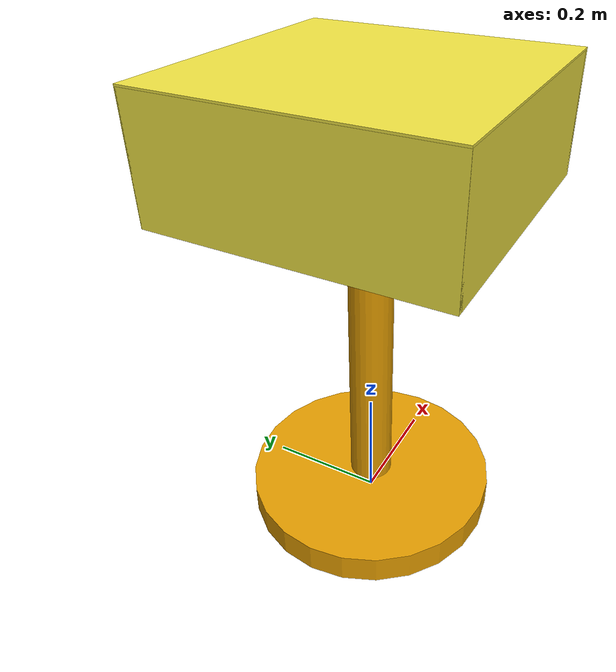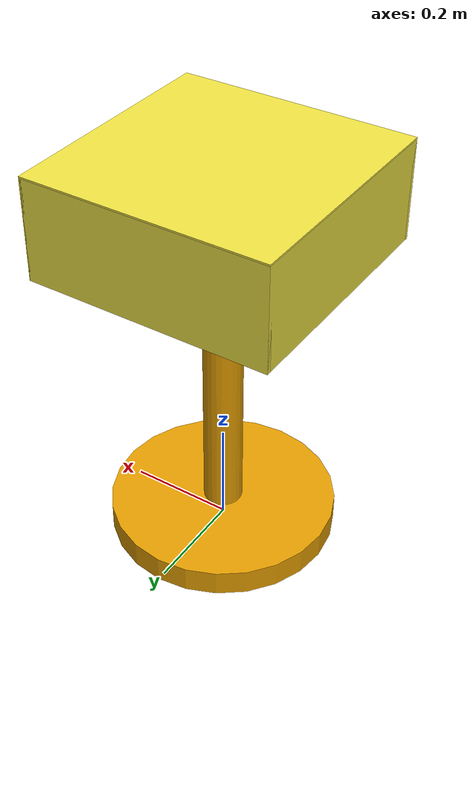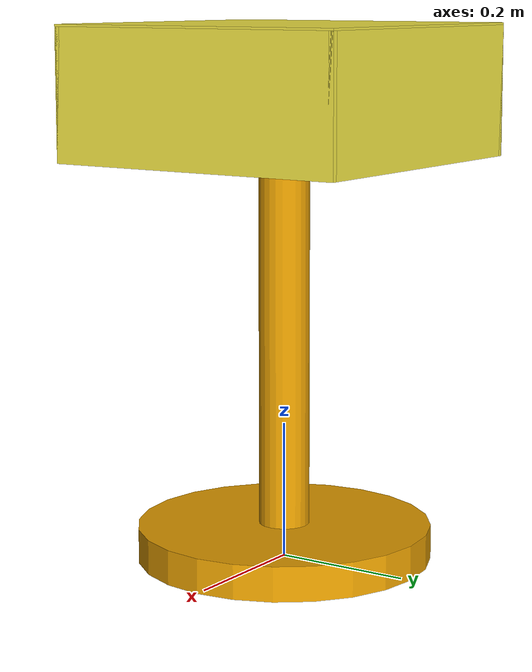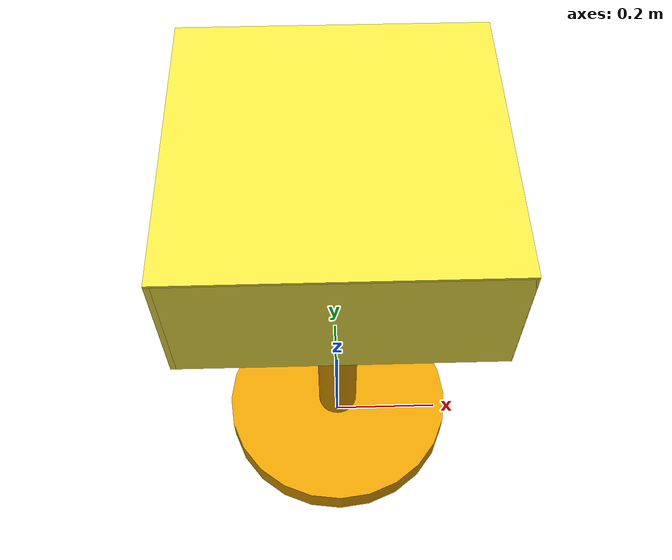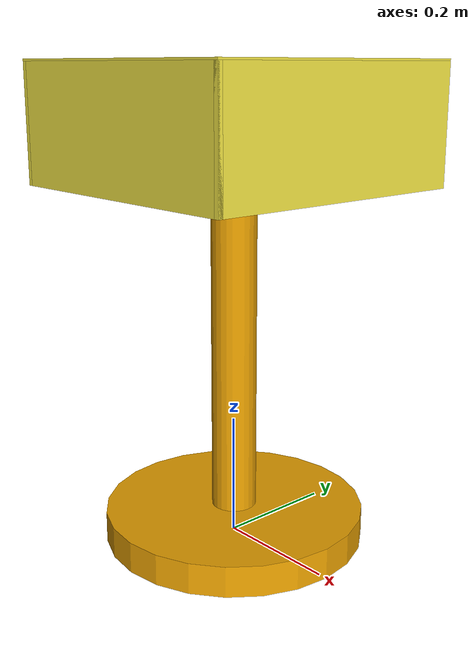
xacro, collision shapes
<?xml version="1.0"?>

<robot name="spacecraft_simulator">

  <!-- Represents a simplified pedestal design for the spacecraft simulator
  model -->
  <link name="base_link">
    <inertial>
      <!-- Mass according to rough measuring of the full 5DOF sc
      upper stage -->
      <mass value="8.764"/>
      <!-- Sets up center of mass of link at the bottom of the ball joint -->
      <origin xyz="0 0 0.155"/>
      <!-- Inertia according to solidworks model of the full 5DOF sc
      upper stage -->
      <inertia ixx="3.79" iyy="0.20" izz="3.80"
               ixy="-0.12" ixz="0.01" iyz="-0.01"/>
    </inertial>
    <visual>
      <geometry>
        <mesh filename="package://spacecraft_simulator_description/meshes/sc_bot_ball_v2.dae"/>
      </geometry>
    </visual>

    <!-- Simplified collision model of pedestal top -->
    <collision>
      <origin xyz="0 0 0.365085"/>
      <geometry>
        <cylinder radius="0.037" length="0.65317"/>
      </geometry>
    </collision>

    <!-- Simplified collision model of pedestal bottom -->
    <collision>
      <!-- Determines position on link where collision is checked -->
      <origin xyz="0 0 0.02521"/>
      <geometry>
        <cylinder radius="0.2159" length="0.05042"/>
      </geometry>
      <surface>
        <contact>
          <ode>
            <!-- Counts a collision at a minimum of 0.0 meters of overlap -->
            <min_depth>0.0</min_depth>
            <max_vel>0.5</max_vel>
          </ode>
        </contact>
        <friction>
          <ode>
            <mu>0.0</mu>
            <mu2>0.0</mu2>
          </ode>
        </friction>
      </surface>
    </collision>
  </link>

  <!-- Restricted hinge joint representing movement of the upper_stage about
  the y-axis. This approximates the pitch rotational movement for the 5-DOF
  model -->
  <joint name="air_bearing_pitch" type="revolute">
    <origin xyz="0 0 0.69429"/>
    <limit effort="1000.0" lower="-0.7854" upper="0.7854" velocity="0.2"/>
    <parent link="base_link"/>
    <child link="upper_stage_pitch"/>
    <axis xyz="0 1 0"/>
  </joint>

  <!-- Dummy link to support pitch rotational movement of the upper_stage link -->
  <link name="upper_stage_pitch">
    <inertial>
      <mass value="0.025" />
      <inertia ixx="5.8083e-4" ixy="0" ixz="0" iyy="3.0833e-5" iyz="0" izz="5.9083e-4" />
    </inertial>
  </link>

  <!-- Restricted hinge joint representing movement of the upper_stage about
  the x-axis. This approximates the roll rotational movement for the 5-DOF
  model -->
  <joint name="air_bearing_roll" type="revolute">
    <limit effort="1000.0" lower="-0.7854" upper="0.7854" velocity="0.2"/>
    <parent link="upper_stage_pitch"/>
    <child link="upper_stage_roll"/>
    <axis xyz="1 0 0"/>
  </joint>

  <!-- Dummy link to support roll rotational movement of the upper_stage link -->
  <link name="upper_stage_roll">
    <inertial>
      <mass value="0.025" />
      <inertia ixx="5.8083e-4" ixy="0" ixz="0" iyy="3.0833e-5" iyz="0" izz="5.9083e-4" />
    </inertial>
  </link>

  <!-- Fixed joint keeping the upper_stage and base_link connected -->
  <joint name="air_bearing" type="fixed">
    <origin xyz="0 0 -0.69429"/>
    <parent link="upper_stage_roll"/>
    <child link="upper_stage"/>
  </joint>

  <!-- Link representing the simplified upper stage design of the spacecraft
  simulator model -->
  <link name="upper_stage">
    <inertial>
      <!-- Mass according to rough measuring of the full 5DOF sc
      upper stage -->
      <mass value="11.126"/>
      <!-- Sets up center of mass of link at the bottom of the ball joint -->
      <origin xyz="0 0 0.69429"/>
      <!-- Inertia according to solidworks model of the full 5DOF sc
      upper stage -->
      <inertia ixx="0.27" iyy="0.48" izz="0.25"
               ixy="0.00" ixz="0.02" iyz="0.00"/>
    </inertial>

    <visual>
      <origin xyz="0 0 -0.06"/>
      <geometry>
        <mesh filename="package://spacecraft_simulator_description/meshes/sc_top_ball.dae"/>
      </geometry>
    </visual>

    <!-- Simple collision model of the upper stage's top plate -->
    <collision>
      <origin xyz="0 0 0.7782"/>
      <geometry>
        <box size="0.4572 0.4572 0.00318"/>
      </geometry>
    </collision>

    <!-- Simple collision models of the upper stage's walls -->
    <collision>
      <origin xyz="0.224775 0 0.68161"/>
      <geometry>
        <box size="0.00765 0.4572 0.19"/>
      </geometry>
    </collision>
    <collision>
      <origin xyz="0 0.224775 0.68161"/>
      <geometry>
        <box size="0.4572 0.00765 0.19"/>
      </geometry>
    </collision>
    <collision>
      <origin xyz="-0.224775 0 0.68161"/>
      <geometry>
        <box size="0.00765 0.4572 0.19"/>
      </geometry>
    </collision>
    <collision>
      <origin xyz="0 -0.224775 0.68161"/>
      <geometry>
        <box size="0.4572 0.00765 0.19"/>
      </geometry>
    </collision>
  </link>

  <gazebo>
    <!-- Plugin that controls movement of the model using forces at relative
    positions to the model's center of mass. Designed the model forces applied
    at specific thruster locations. -->
    <plugin name="thruster_force_controller" filename="libspacecraft_thruster16_force.so">
      <bodyName>upper_stage_roll</bodyName>
      <topicName>$(arg spacecraft_name)/thruster16_force</topicName>
    </plugin>

    <!-- Plugin that provides a 3D position interface for ground truth.
    Publishes pose of the spacecraft link in simulation using Odometry
    messages. -->
    <plugin name="sc_model_pose" filename="libgazebo_ros_p3d.so">
      <alwaysOn>true</alwaysOn>
      <updateRate>100.0</updateRate>
      <bodyName>upper_stage_roll</bodyName>
      <topicName>$(arg spacecraft_name)_pose</topicName>
      <gaussianNoise>0.0</gaussianNoise>
      <frameName>map</frameName>
      <xyzOffsets>0 0 0</xyzOffsets>
      <rpyOffsets>0 0 0</rpyOffsets>
    </plugin>
  </gazebo>

</robot>
